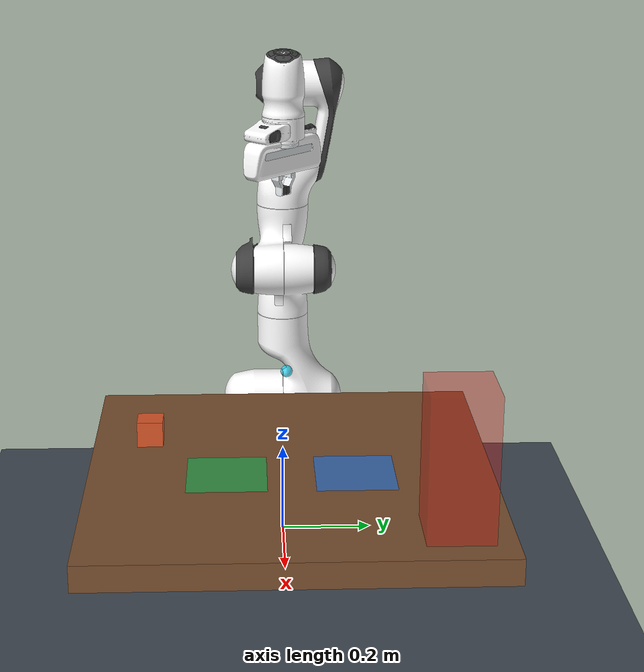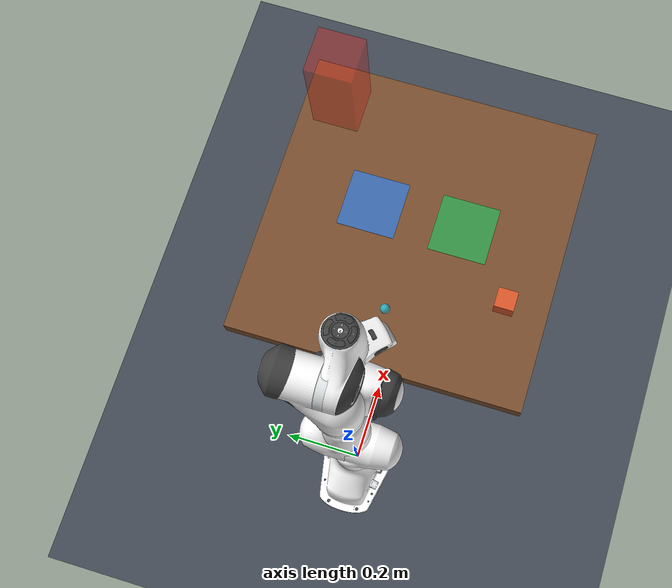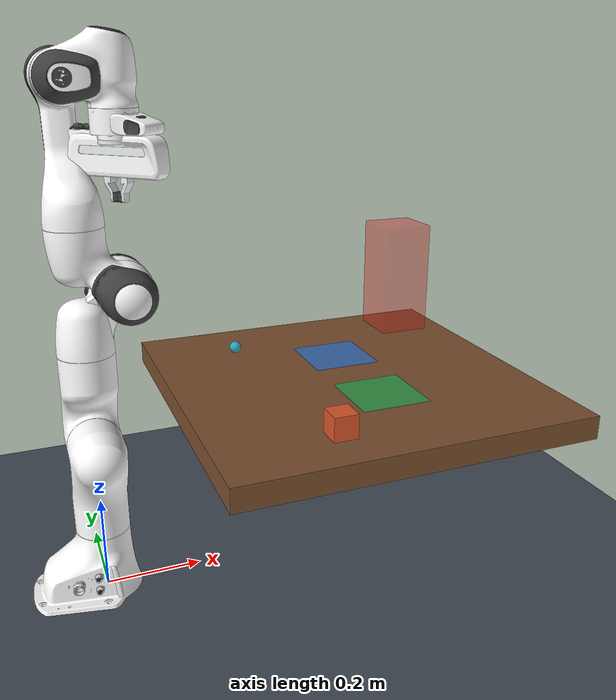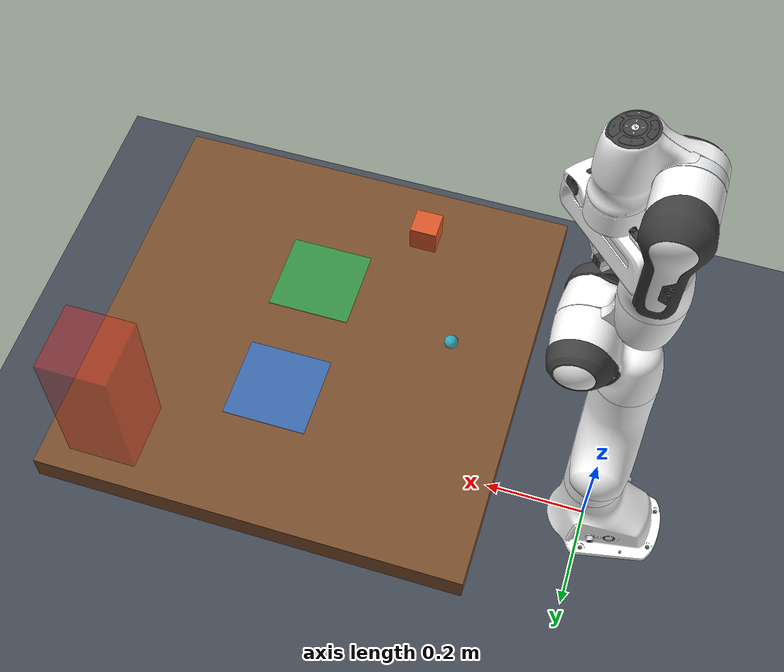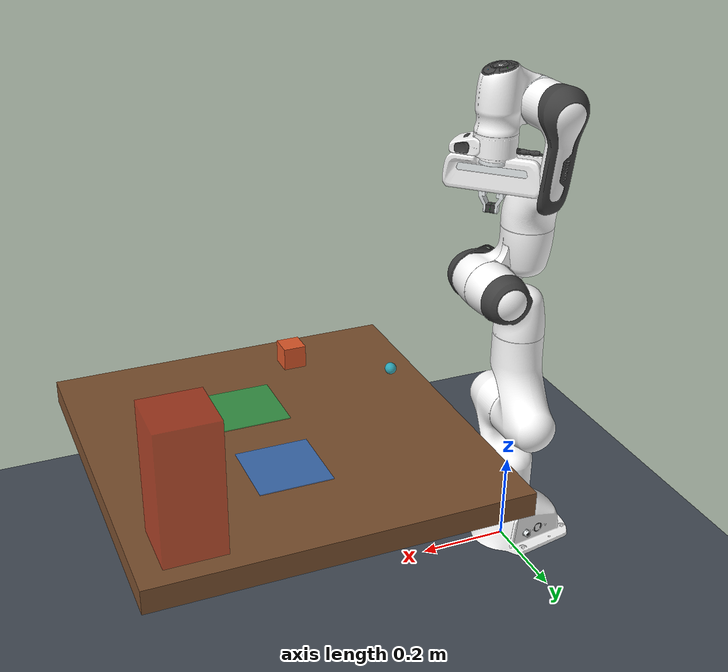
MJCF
<mujoco model="panda task scene">
  <include file="../third_party/franka_emika_panda/panda_mocap.xml"/>

  <visual>
    <headlight diffuse="0.65 0.65 0.65" ambient="0.28 0.28 0.28" specular="0.08 0.08 0.08"/>
    <global azimuth="135" elevation="-25" offwidth="1200" offheight="900"/>
  </visual>

  <asset>
    <texture name="floor_grid" type="2d" builtin="checker" width="512" height="512"
      rgb1="0.22 0.25 0.29" rgb2="0.30 0.33 0.37" mark="edge" markrgb="0.55 0.58 0.62"/>
    <material name="floor_mat" texture="floor_grid" texuniform="true" texrepeat="4 4" reflectance="0.08"/>
  </asset>

  <worldbody>
    <light name="key_light" pos="0.25 -0.5 1.8" dir="0.2 0.2 -1" diffuse="0.8 0.8 0.8"/>
    <geom name="floor" type="plane" pos="0 0 -0.01" size="2 2 0.1" material="floor_mat"/>

    <body name="table" pos="0.55 0 0.375">
      <geom name="table_top" type="box" size="0.38 0.38 0.025" rgba="0.48 0.31 0.18 1"
        friction="0.9 0.01 0.001"/>
    </body>

    <body name="cube" pos="0.42 -0.27 0.425">
      <freejoint name="cube_free"/>
      <geom name="cube_geom" type="box" size="0.025 0.025 0.025" mass="0.08"
        rgba="0.86 0.34 0.16 1" friction="0.8 0.01 0.001"/>
    </body>

    <geom name="target_a" type="box" pos="0.58 -0.12 0.401" size="0.075 0.075 0.001"
      contype="0" conaffinity="0" rgba="0.15 0.72 0.35 0.72"/>
    <geom name="target_b" type="box" pos="0.58 0.12 0.401" size="0.075 0.075 0.001"
      contype="0" conaffinity="0" rgba="0.18 0.50 0.92 0.72"/>
    <!-- Visual-only restricted volume; M2 enforces a clearance around this named geom. -->
    <geom name="danger_zone" type="box" pos="0.82 0.28 0.535" size="0.06 0.06 0.135"
      contype="0" conaffinity="0" rgba="0.95 0.08 0.05 0.34"/>

    <body name="mocap_target" mocap="true" pos="0.30 0 0.50">
      <site name="mocap_site" type="sphere" size="0.012" rgba="0.1 0.85 1 0.7"/>
    </body>
  </worldbody>

  <keyframe>
    <!-- Project scene keyframe includes the free cube pose after the upstream Panda joints. -->
    <key name="home_scene"
      qpos="0 0 0 -1.57079 0 1.57079 -0.7853 0.04 0.04 0.42 -0.27 0.425 1 0 0 0"
      ctrl="0 0 0 -1.57079 0 1.57079 -0.7853 255"/>
  </keyframe>
</mujoco>

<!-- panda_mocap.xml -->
<mujoco model="panda">
  <compiler angle="radian" meshdir="../third_party/franka_emika_panda/assets" autolimits="true"/>

  <!-- Project derivative: disable arm position servos so the mocap weld drives the arm. -->
  <option integrator="implicitfast" timestep="0.002" actuatorgroupdisable="0"/>

  <default>
    <default class="panda">
      <material specular="0.5" shininess="0.25"/>
      <joint armature="0.1" damping="1" axis="0 0 1" range="-2.8973 2.8973"/>
      <general dyntype="none" biastype="affine" ctrlrange="-2.8973 2.8973" forcerange="-87 87"/>
      <default class="finger">
        <joint axis="0 1 0" type="slide" range="0 0.04"/>
      </default>

      <default class="visual">
        <geom type="mesh" contype="0" conaffinity="0" group="2"/>
      </default>
      <default class="collision">
        <geom type="mesh" group="3"/>
        <default class="fingertip_pad_collision_1">
          <geom type="box" size="0.0085 0.004 0.0085" pos="0 0.0055 0.0445"/>
        </default>
        <default class="fingertip_pad_collision_2">
          <geom type="box" size="0.003 0.002 0.003" pos="0.0055 0.002 0.05"/>
        </default>
        <default class="fingertip_pad_collision_3">
          <geom type="box" size="0.003 0.002 0.003" pos="-0.0055 0.002 0.05"/>
        </default>
        <default class="fingertip_pad_collision_4">
          <geom type="box" size="0.003 0.002 0.0035" pos="0.0055 0.002 0.0395"/>
        </default>
        <default class="fingertip_pad_collision_5">
          <geom type="box" size="0.003 0.002 0.0035" pos="-0.0055 0.002 0.0395"/>
        </default>
      </default>
    </default>
  </default>

  <asset>
    <material class="panda" name="white" rgba="1 1 1 1"/>
    <material class="panda" name="off_white" rgba="0.901961 0.921569 0.929412 1"/>
    <material class="panda" name="black" rgba="0.25 0.25 0.25 1"/>
    <material class="panda" name="green" rgba="0 1 0 1"/>
    <material class="panda" name="light_blue" rgba="0.039216 0.541176 0.780392 1"/>

    <!-- Collision meshes -->
    <mesh name="link0_c" file="link0.stl"/>
    <mesh name="link1_c" file="link1.stl"/>
    <mesh name="link2_c" file="link2.stl"/>
    <mesh name="link3_c" file="link3.stl"/>
    <mesh name="link4_c" file="link4.stl"/>
    <mesh name="link5_c0" file="link5_collision_0.obj"/>
    <mesh name="link5_c1" file="link5_collision_1.obj"/>
    <mesh name="link5_c2" file="link5_collision_2.obj"/>
    <mesh name="link6_c" file="link6.stl"/>
    <mesh name="link7_c" file="link7.stl"/>
    <mesh name="hand_c" file="hand.stl"/>

    <!-- Visual meshes -->
    <mesh file="link0_0.obj"/>
    <mesh file="link0_1.obj"/>
    <mesh file="link0_2.obj"/>
    <mesh file="link0_3.obj"/>
    <mesh file="link0_4.obj"/>
    <mesh file="link0_5.obj"/>
    <mesh file="link0_7.obj"/>
    <mesh file="link0_8.obj"/>
    <mesh file="link0_9.obj"/>
    <mesh file="link0_10.obj"/>
    <mesh file="link0_11.obj"/>
    <mesh file="link1.obj"/>
    <mesh file="link2.obj"/>
    <mesh file="link3_0.obj"/>
    <mesh file="link3_1.obj"/>
    <mesh file="link3_2.obj"/>
    <mesh file="link3_3.obj"/>
    <mesh file="link4_0.obj"/>
    <mesh file="link4_1.obj"/>
    <mesh file="link4_2.obj"/>
    <mesh file="link4_3.obj"/>
    <mesh file="link5_0.obj"/>
    <mesh file="link5_1.obj"/>
    <mesh file="link5_2.obj"/>
    <mesh file="link6_0.obj"/>
    <mesh file="link6_1.obj"/>
    <mesh file="link6_2.obj"/>
    <mesh file="link6_3.obj"/>
    <mesh file="link6_4.obj"/>
    <mesh file="link6_5.obj"/>
    <mesh file="link6_6.obj"/>
    <mesh file="link6_7.obj"/>
    <mesh file="link6_8.obj"/>
    <mesh file="link6_9.obj"/>
    <mesh file="link6_10.obj"/>
    <mesh file="link6_11.obj"/>
    <mesh file="link6_12.obj"/>
    <mesh file="link6_13.obj"/>
    <mesh file="link6_14.obj"/>
    <mesh file="link6_15.obj"/>
    <mesh file="link6_16.obj"/>
    <mesh file="link7_0.obj"/>
    <mesh file="link7_1.obj"/>
    <mesh file="link7_2.obj"/>
    <mesh file="link7_3.obj"/>
    <mesh file="link7_4.obj"/>
    <mesh file="link7_5.obj"/>
    <mesh file="link7_6.obj"/>
    <mesh file="link7_7.obj"/>
    <mesh file="hand_0.obj"/>
    <mesh file="hand_1.obj"/>
    <mesh file="hand_2.obj"/>
    <mesh file="hand_3.obj"/>
    <mesh file="hand_4.obj"/>
    <mesh file="finger_0.obj"/>
    <mesh file="finger_1.obj"/>
  </asset>

  <worldbody>
    <light name="top" pos="0 0 2" mode="trackcom"/>
    <body name="link0" childclass="panda">
      <inertial mass="0.629769" pos="-0.041018 -0.00014 0.049974"
        fullinertia="0.00315 0.00388 0.004285 8.2904e-7 0.00015 8.2299e-6"/>
      <geom mesh="link0_0" material="off_white" class="visual"/>
      <geom mesh="link0_1" material="black" class="visual"/>
      <geom mesh="link0_2" material="off_white" class="visual"/>
      <geom mesh="link0_3" material="black" class="visual"/>
      <geom mesh="link0_4" material="off_white" class="visual"/>
      <geom mesh="link0_5" material="black" class="visual"/>
      <geom mesh="link0_7" material="white" class="visual"/>
      <geom mesh="link0_8" material="white" class="visual"/>
      <geom mesh="link0_9" material="black" class="visual"/>
      <geom mesh="link0_10" material="off_white" class="visual"/>
      <geom mesh="link0_11" material="white" class="visual"/>
      <geom mesh="link0_c" class="collision"/>
      <body name="link1" pos="0 0 0.333">
        <inertial mass="4.970684" pos="0.003875 0.002081 -0.04762"
          fullinertia="0.70337 0.70661 0.0091170 -0.00013900 0.0067720 0.019169"/>
        <joint name="joint1"/>
        <geom material="white" mesh="link1" class="visual"/>
        <geom mesh="link1_c" class="collision"/>
        <body name="link2" quat="1 -1 0 0">
          <inertial mass="0.646926" pos="-0.003141 -0.02872 0.003495"
            fullinertia="0.0079620 2.8110e-2 2.5995e-2 -3.925e-3 1.0254e-2 7.04e-4"/>
          <joint name="joint2" range="-1.7628 1.7628"/>
          <geom material="white" mesh="link2" class="visual"/>
          <geom mesh="link2_c" class="collision"/>
          <body name="link3" pos="0 -0.316 0" quat="1 1 0 0">
            <joint name="joint3"/>
            <inertial mass="3.228604" pos="2.7518e-2 3.9252e-2 -6.6502e-2"
              fullinertia="3.7242e-2 3.6155e-2 1.083e-2 -4.761e-3 -1.1396e-2 -1.2805e-2"/>
            <geom mesh="link3_0" material="white" class="visual"/>
            <geom mesh="link3_1" material="white" class="visual"/>
            <geom mesh="link3_2" material="white" class="visual"/>
            <geom mesh="link3_3" material="black" class="visual"/>
            <geom mesh="link3_c" class="collision"/>
            <body name="link4" pos="0.0825 0 0" quat="1 1 0 0">
              <inertial mass="3.587895" pos="-5.317e-2 1.04419e-1 2.7454e-2"
                fullinertia="2.5853e-2 1.9552e-2 2.8323e-2 7.796e-3 -1.332e-3 8.641e-3"/>
              <joint name="joint4" range="-3.0718 -0.0698"/>
              <geom mesh="link4_0" material="white" class="visual"/>
              <geom mesh="link4_1" material="white" class="visual"/>
              <geom mesh="link4_2" material="black" class="visual"/>
              <geom mesh="link4_3" material="white" class="visual"/>
              <geom mesh="link4_c" class="collision"/>
              <body name="link5" pos="-0.0825 0.384 0" quat="1 -1 0 0">
                <inertial mass="1.225946" pos="-1.1953e-2 4.1065e-2 -3.8437e-2"
                  fullinertia="3.5549e-2 2.9474e-2 8.627e-3 -2.117e-3 -4.037e-3 2.29e-4"/>
                <joint name="joint5"/>
                <geom mesh="link5_0" material="black" class="visual"/>
                <geom mesh="link5_1" material="white" class="visual"/>
                <geom mesh="link5_2" material="white" class="visual"/>
                <geom mesh="link5_c0" class="collision"/>
                <geom mesh="link5_c1" class="collision"/>
                <geom mesh="link5_c2" class="collision"/>
                <body name="link6" quat="1 1 0 0">
                  <inertial mass="1.666555" pos="6.0149e-2 -1.4117e-2 -1.0517e-2"
                    fullinertia="1.964e-3 4.354e-3 5.433e-3 1.09e-4 -1.158e-3 3.41e-4"/>
                  <joint name="joint6" range="-0.0175 3.7525"/>
                  <geom mesh="link6_0" material="off_white" class="visual"/>
                  <geom mesh="link6_1" material="white" class="visual"/>
                  <geom mesh="link6_2" material="black" class="visual"/>
                  <geom mesh="link6_3" material="white" class="visual"/>
                  <geom mesh="link6_4" material="white" class="visual"/>
                  <geom mesh="link6_5" material="white" class="visual"/>
                  <geom mesh="link6_6" material="white" class="visual"/>
                  <geom mesh="link6_7" material="light_blue" class="visual"/>
                  <geom mesh="link6_8" material="light_blue" class="visual"/>
                  <geom mesh="link6_9" material="black" class="visual"/>
                  <geom mesh="link6_10" material="black" class="visual"/>
                  <geom mesh="link6_11" material="white" class="visual"/>
                  <geom mesh="link6_12" material="green" class="visual"/>
                  <geom mesh="link6_13" material="white" class="visual"/>
                  <geom mesh="link6_14" material="black" class="visual"/>
                  <geom mesh="link6_15" material="black" class="visual"/>
                  <geom mesh="link6_16" material="white" class="visual"/>
                  <geom mesh="link6_c" class="collision"/>
                  <body name="link7" pos="0.088 0 0" quat="1 1 0 0">
                    <inertial mass="7.35522e-01" pos="1.0517e-2 -4.252e-3 6.1597e-2"
                      fullinertia="1.2516e-2 1.0027e-2 4.815e-3 -4.28e-4 -1.196e-3 -7.41e-4"/>
                    <joint name="joint7"/>
                    <geom mesh="link7_0" material="white" class="visual"/>
                    <geom mesh="link7_1" material="black" class="visual"/>
                    <geom mesh="link7_2" material="black" class="visual"/>
                    <geom mesh="link7_3" material="black" class="visual"/>
                    <geom mesh="link7_4" material="black" class="visual"/>
                    <geom mesh="link7_5" material="black" class="visual"/>
                    <geom mesh="link7_6" material="black" class="visual"/>
                    <geom mesh="link7_7" material="white" class="visual"/>
                    <geom mesh="link7_c" class="collision"/>
                    <body name="hand" pos="0 0 0.107" quat="0.9238795 0 0 -0.3826834">
                      <inertial mass="0.73" pos="-0.01 0 0.03" diaginertia="0.001 0.0025 0.0017"/>
                      <geom mesh="hand_0" material="off_white" class="visual"/>
                      <geom mesh="hand_1" material="black" class="visual"/>
                      <geom mesh="hand_2" material="black" class="visual"/>
                      <geom mesh="hand_3" material="white" class="visual"/>
                      <geom mesh="hand_4" material="off_white" class="visual"/>
                      <geom mesh="hand_c" class="collision"/>
                      <!-- TCP at the center of the fingertip span, 0.1034 m from the hand frame. -->
                      <site name="ee_site" pos="0 0 0.1034" size="0.008" rgba="0.1 0.9 0.2 1"/>
                      <body name="left_finger" pos="0 0 0.0584">
                        <inertial mass="0.015" pos="0 0 0" diaginertia="2.375e-6 2.375e-6 7.5e-7"/>
                        <joint name="finger_joint1" class="finger"/>
                        <geom mesh="finger_0" material="off_white" class="visual"/>
                        <geom mesh="finger_1" material="black" class="visual"/>
                        <geom mesh="finger_0" class="collision"/>
                        <geom class="fingertip_pad_collision_1"/>
                        <geom class="fingertip_pad_collision_2"/>
                        <geom class="fingertip_pad_collision_3"/>
                        <geom class="fingertip_pad_collision_4"/>
                        <geom class="fingertip_pad_collision_5"/>
                      </body>
                      <body name="right_finger" pos="0 0 0.0584" quat="0 0 0 1">
                        <inertial mass="0.015" pos="0 0 0" diaginertia="2.375e-6 2.375e-6 7.5e-7"/>
                        <joint name="finger_joint2" class="finger"/>
                        <geom mesh="finger_0" material="off_white" class="visual"/>
                        <geom mesh="finger_1" material="black" class="visual"/>
                        <geom mesh="finger_0" class="collision"/>
                        <geom class="fingertip_pad_collision_1"/>
                        <geom class="fingertip_pad_collision_2"/>
                        <geom class="fingertip_pad_collision_3"/>
                        <geom class="fingertip_pad_collision_4"/>
                        <geom class="fingertip_pad_collision_5"/>
                      </body>
                    </body>
                  </body>
                </body>
              </body>
            </body>
          </body>
        </body>
      </body>
    </body>
  </worldbody>

  <tendon>
    <fixed name="split">
      <joint joint="finger_joint1" coef="0.5"/>
      <joint joint="finger_joint2" coef="0.5"/>
    </fixed>
  </tendon>

  <equality>
    <joint joint1="finger_joint1" joint2="finger_joint2" solimp="0.95 0.99 0.001" solref="0.005 1"/>
    <!-- Project derivative: constrain the end-effector TCP to the mocap target site. -->
    <weld name="mocap_weld" site1="ee_site" site2="mocap_site"/>
  </equality>

  <actuator>
    <general class="panda" name="actuator1" joint="joint1" group="0" gainprm="4500" biasprm="0 -4500 -450"/>
    <general class="panda" name="actuator2" joint="joint2" group="0" gainprm="4500" biasprm="0 -4500 -450"
      ctrlrange="-1.7628 1.7628"/>
    <general class="panda" name="actuator3" joint="joint3" group="0" gainprm="3500" biasprm="0 -3500 -350"/>
    <general class="panda" name="actuator4" joint="joint4" group="0" gainprm="3500" biasprm="0 -3500 -350"
      ctrlrange="-3.0718 -0.0698"/>
    <general class="panda" name="actuator5" joint="joint5" group="0" gainprm="2000" biasprm="0 -2000 -200" forcerange="-12 12"/>
    <general class="panda" name="actuator6" joint="joint6" group="0" gainprm="2000" biasprm="0 -2000 -200" forcerange="-12 12"
      ctrlrange="-0.0175 3.7525"/>
    <general class="panda" name="actuator7" joint="joint7" group="0" gainprm="2000" biasprm="0 -2000 -200" forcerange="-12 12"/>
    <!-- Remap original ctrlrange (0, 0.04) to (0, 255): 0.04 * 100 / 255 = 0.01568627451 -->
    <general class="panda" name="actuator8" tendon="split" group="1" forcerange="-100 100" ctrlrange="0 255"
      gainprm="0.01568627451 0 0" biasprm="0 -100 -10"/>
  </actuator>

  <keyframe>
    <key name="home" qpos="0 0 0 -1.57079 0 1.57079 -0.7853 0.04 0.04" ctrl="0 0 0 -1.57079 0 1.57079 -0.7853 255"/>
  </keyframe>

  <contact>
    <exclude body1="link0" body2="link1"/>
  </contact>
</mujoco>
